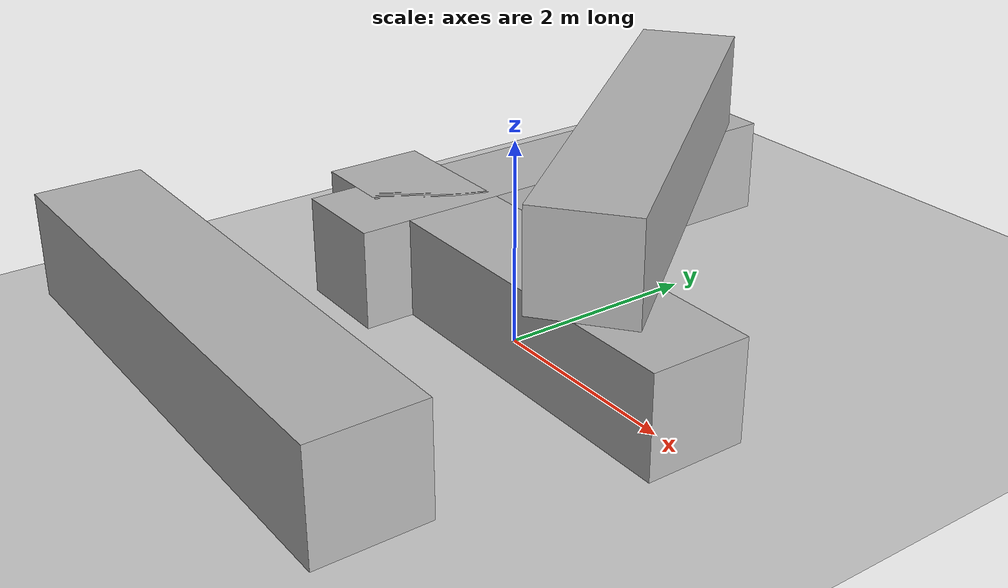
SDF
<?xml version="1.0" ?>
<sdf version="1.5">
  <world name="default">

    <model name="ground_plane">
      <static>true</static>
      <link name="link">
        <collision name="collision">
          <geometry>
            <plane>
              <normal>0 0 1</normal>
              <size>100 100</size>
            </plane>
          </geometry>
          <surface>
            <contact>
               <collide_bitmask>0xff</collide_bitmask>
            </contact>
            <friction>
              <ode>
                <mu>100</mu>
                <mu2>50</mu2>
              </ode>
            </friction>
          </surface>
        </collision>
        <visual name="visual">
          <cast_shadows>false</cast_shadows>
          <geometry>
            <plane>
              <normal>0 0 1</normal>
              <size>100 100</size>
            </plane>
          </geometry>
          <material>
            <script>
              <uri>file://media/materials/scripts/gazebo.material</uri>
              <name>Gazebo/Grey</name>
            </script>
          </material>
        </visual>
      </link>
    </model>

    <model name="box1">
      <pose>0 0 0.5 0 0 0</pose>
      <link name="link">
        <inertial>
          <mass>1</mass>
          <inertia>
            <ixx>0.166667</ixx>
            <ixy>0</ixy>
            <ixz>0</ixz>
            <iyy>2.166667</iyy>
            <iyz>0</iyz>
            <izz>2.166667</izz>
          </inertia>
        </inertial>
        <collision name="collision">
          <geometry>
            <box>
              <size>5 1 1</size>
            </box>
          </geometry>
          <surface>
            <contact>
              <collide_bitmask>0x01</collide_bitmask>
            </contact>
          </surface>
        </collision>
        <visual name="visual">
          <geometry>
            <box>
              <size>5 1 1</size>
            </box>
          </geometry>
        </visual>
      </link>
    </model>

    <model name="box2">
      <pose>-1.5 1.5 0.5 0 0 1.57</pose>
      <link name="link">
        <inertial>
          <mass>1</mass>
          <inertia>
            <ixx>0.166667</ixx>
            <ixy>0</ixy>
            <ixz>0</ixz>
            <iyy>2.166667</iyy>
            <iyz>0</iyz>
            <izz>2.166667</izz>
          </inertia>
        </inertial>
        <collision name="collision">
          <geometry>
            <box>
              <size>5 1 1</size>
            </box>
          </geometry>
          <surface>
            <contact>
              <collide_bitmask>0x02</collide_bitmask>
            </contact>
          </surface>
        </collision>
        <visual name="visual">
          <geometry>
            <box>
              <size>5 1 1</size>
            </box>
          </geometry>
        </visual>
      </link>
    </model>

    <model name="box3">
      <pose>0 1.5 1.5 0 0 2.24</pose>
      <link name="link">
        <inertial>
          <mass>1</mass>
          <inertia>
            <ixx>0.166667</ixx>
            <ixy>0</ixy>
            <ixz>0</ixz>
            <iyy>2.166667</iyy>
            <iyz>0</iyz>
            <izz>2.166667</izz>
          </inertia>
        </inertial>
        <collision name="collision">
          <geometry>
            <box>
              <size>5 1 1</size>
            </box>
          </geometry>
          <surface>
            <contact>
              <collide_bitmask>0x03</collide_bitmask>
            </contact>
          </surface>
        </collision>
        <visual name="visual">
          <geometry>
            <box>
              <size>5 1 1</size>
            </box>
          </geometry>
        </visual>
      </link>
    </model>

    <model name="box4">
      <pose>0 -3 1.0 0 0 0</pose>
      <link name="link">
        <inertial>
          <mass>1</mass>
          <inertia>
            <ixx>0.166667</ixx>
            <ixy>0</ixy>
            <ixz>0</ixz>
            <iyy>2.166667</iyy>
            <iyz>0</iyz>
            <izz>2.166667</izz>
          </inertia>
        </inertial>
        <collision name="collision">
          <geometry>
            <box>
              <size>5 1 1</size>
            </box>
          </geometry>
          <surface>
            <contact>
              <collide_bitmask>0x10000</collide_bitmask>
            </contact>
          </surface>
        </collision>
        <visual name="visual">
          <geometry>
            <box>
              <size>5 1 1</size>
            </box>
          </geometry>
        </visual>
      </link>
    </model>

  </world>
</sdf>
